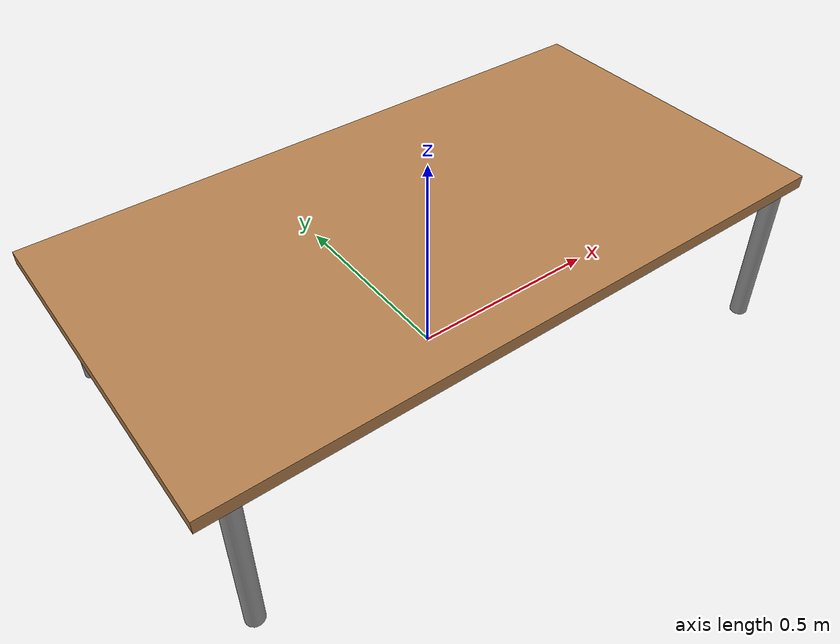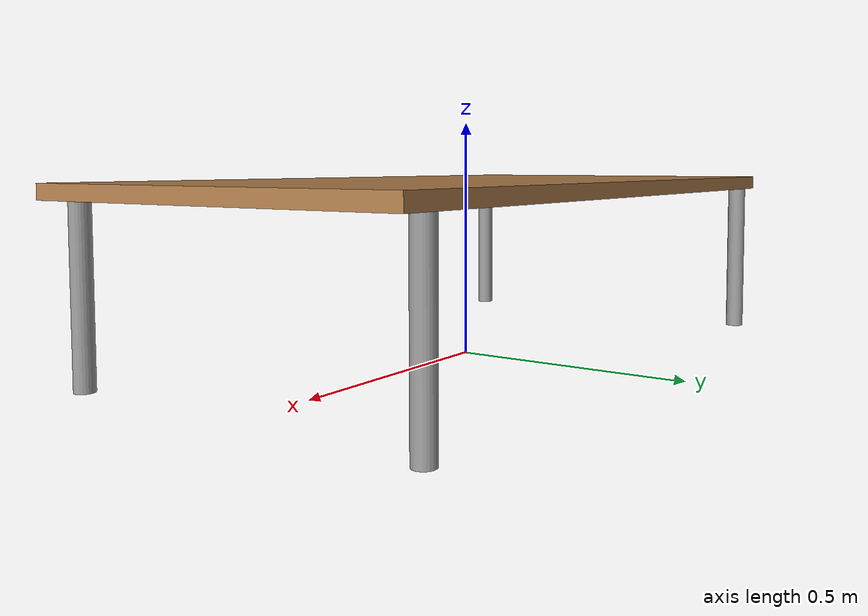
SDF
<?xml version="1.0" ?>

<sdf version="1.5">
  <model name="vte_table">
    <static>true</static>
    <link name="vte_table_root_link">
      <collision name="vte_table_surface_collision">
	<pose>0 0 0.365 0 0 0</pose>
	<geometry>
          <box>
            <size>1.5 0.8 0.03</size>
          </box>
	</geometry>
	<surface>
          <friction>
            <ode>
              <mu>0.1</mu>
              <mu2>0.1</mu2>
            </ode>
          </friction>
	</surface>
      </collision>
      <visual name="vte_table_surface_visual">
	<pose>0 0 0.365 0 0 0</pose>
	<geometry>
          <box>
            <size>1.5 0.8 0.03</size>
          </box>
	</geometry>
	<material>
          <script>
            <uri>file://media/materials/scripts/gazebo.material</uri>
            <name>Gazebo/Wood</name>
          </script>
	</material>
      </visual>
      <collision name="front_left_leg">
        <pose>0.68 0.38 0.175 0 0 0</pose>
        <geometry>
          <cylinder>
            <radius>0.02</radius>
            <length>0.35</length>
          </cylinder>
        </geometry>
      </collision>
      <visual name="front_left_leg">
        <pose>0.68 0.38 0.175 0 0 0</pose>
        <geometry>
          <cylinder>
            <radius>0.02</radius>
            <length>0.35</length>
          </cylinder>
        </geometry>
        <material>
          <script>
            <uri>file://media/materials/scripts/gazebo.material</uri>
            <name>Gazebo/Grey</name>
          </script>
        </material>
      </visual>
      <collision name="front_right_leg">
        <pose>0.68 -0.38 0.175 0 0 0</pose>
        <geometry>
          <cylinder>
            <radius>0.02</radius>
            <length>0.35</length>
          </cylinder>
        </geometry>
      </collision>
      <visual name="front_right_leg">
        <pose>0.68 -0.38 0.175 0 0 0</pose>
        <geometry>
          <cylinder>
            <radius>0.02</radius>
            <length>0.35</length>
          </cylinder>
        </geometry>
        <material>
          <script>
            <uri>file://media/materials/scripts/gazebo.material</uri>
            <name>Gazebo/Grey</name>
          </script>
        </material>
      </visual>
      <collision name="back_right_leg">
        <pose>-0.68 -0.38 0.175 0 0 0</pose>
        <geometry>
          <cylinder>
            <radius>0.02</radius>
            <length>0.35</length>
          </cylinder>
        </geometry>
      </collision>
      <visual name="back_right_leg">
        <pose>-0.68 -0.38 0.175 0 0 0</pose>
        <geometry>
          <cylinder>
            <radius>0.02</radius>
            <length>0.35</length>
          </cylinder>
        </geometry>
        <material>
          <script>
            <uri>file://media/materials/scripts/gazebo.material</uri>
            <name>Gazebo/Grey</name>
          </script>
        </material>
      </visual>
      <collision name="back_left_leg">
        <pose>-0.68 0.38 0.175 0 0 0</pose>
        <geometry>
          <cylinder>
            <radius>0.02</radius>
            <length>0.35</length>
          </cylinder>
        </geometry>
      </collision>
      <visual name="back_left_leg">
        <pose>-0.68 0.38 0.175 0 0 0</pose>
        <geometry>
          <cylinder>
            <radius>0.02</radius>
            <length>0.35</length>
          </cylinder>
        </geometry>
        <material>
          <script>
            <uri>file://media/materials/scripts/gazebo.material</uri>
            <name>Gazebo/Grey</name>
          </script>
        </material>
      </visual>
    </link>
  </model>
</sdf>
